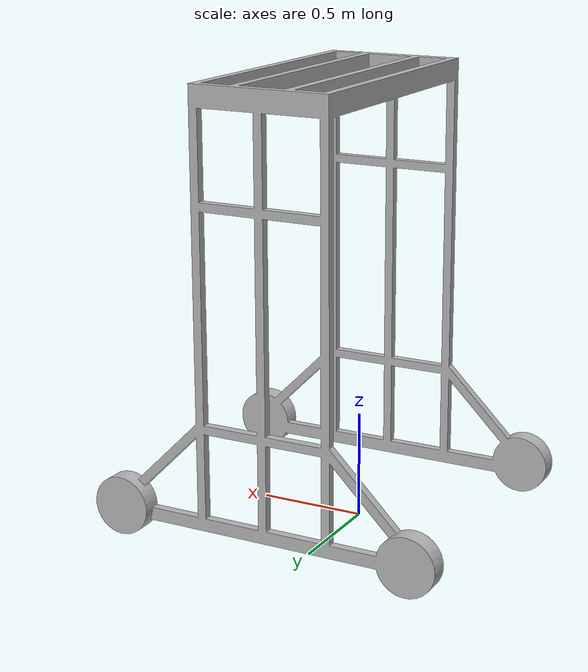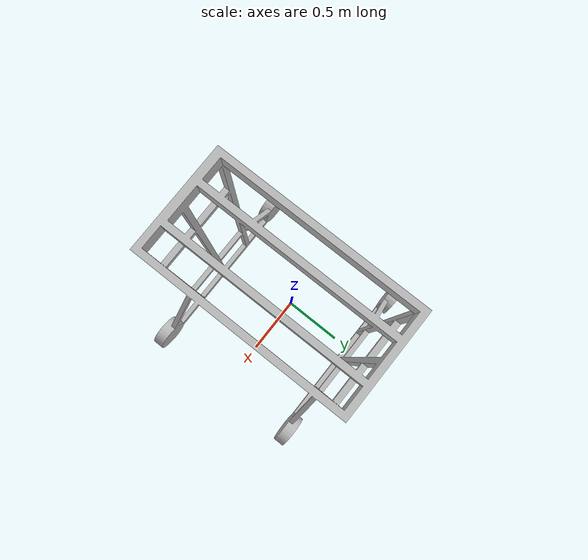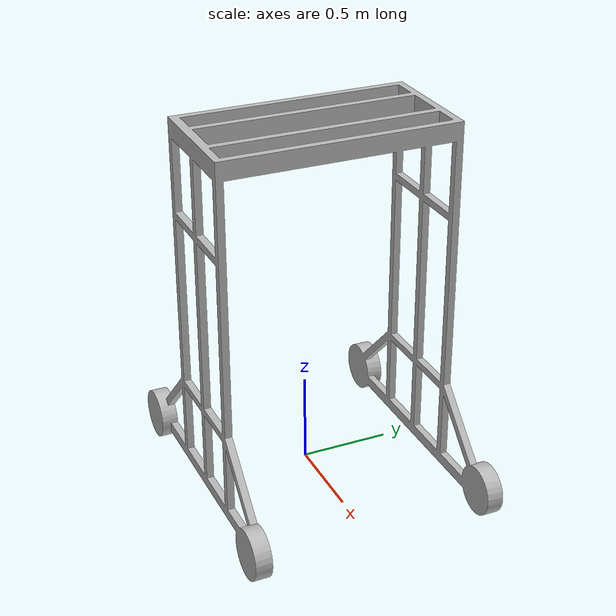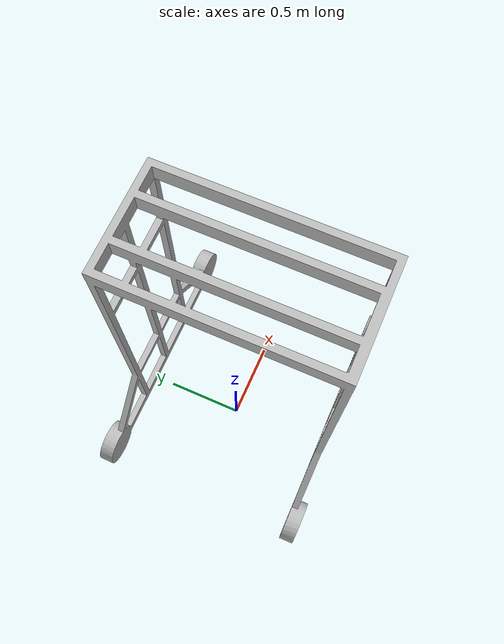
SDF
<?xml version="1.0" ?>
<sdf version="1.5">
 <model name="gantry">
  <pose>0 0 0 0 0 0</pose>
  <static>true</static>
  <link name="link">
   <inertial>
    <origin xyz="0 0 0" rpy="0 0 0"/>
    <mass value="1"/>
   </inertial>
   <collision name="collision">
    <geometry>
      <mesh>
        <uri>model://gantry/meshes/gantry.stl</uri>
        <scale>0.001 0.001 0.001</scale>
      </mesh>
    </geometry>
   </collision>
   <visual name="visual">
    <geometry>
      <mesh>
        <uri>model://gantry/meshes/gantry.stl</uri>
        <scale>0.001 0.001 0.001</scale>
      </mesh>
    </geometry>
   </visual>
  </link>
 </model>
</sdf>
